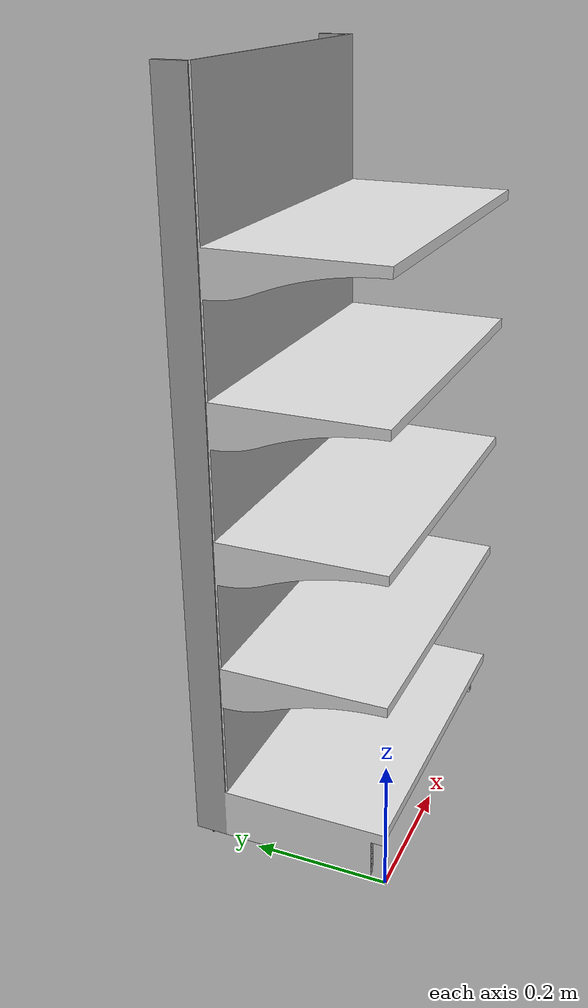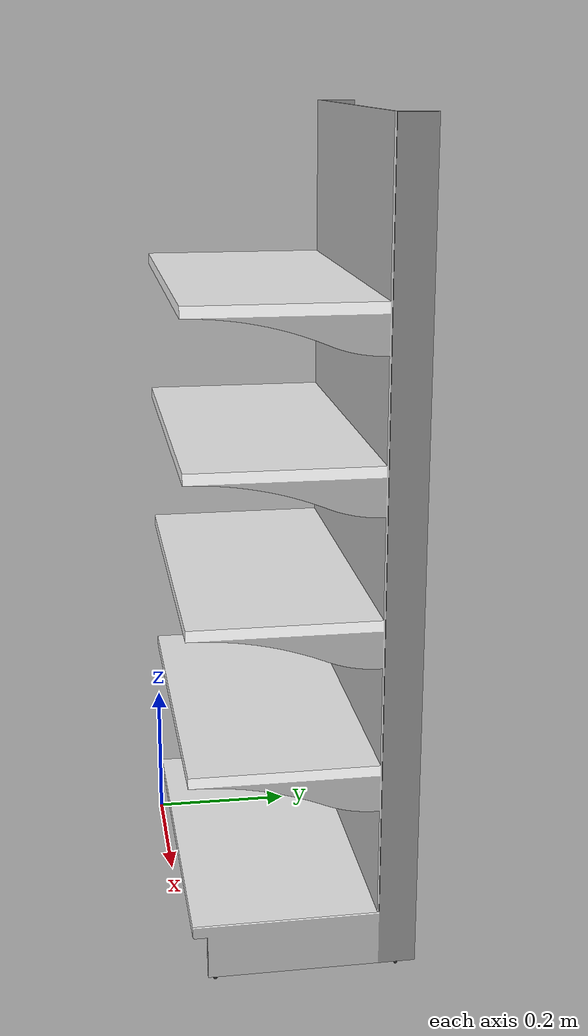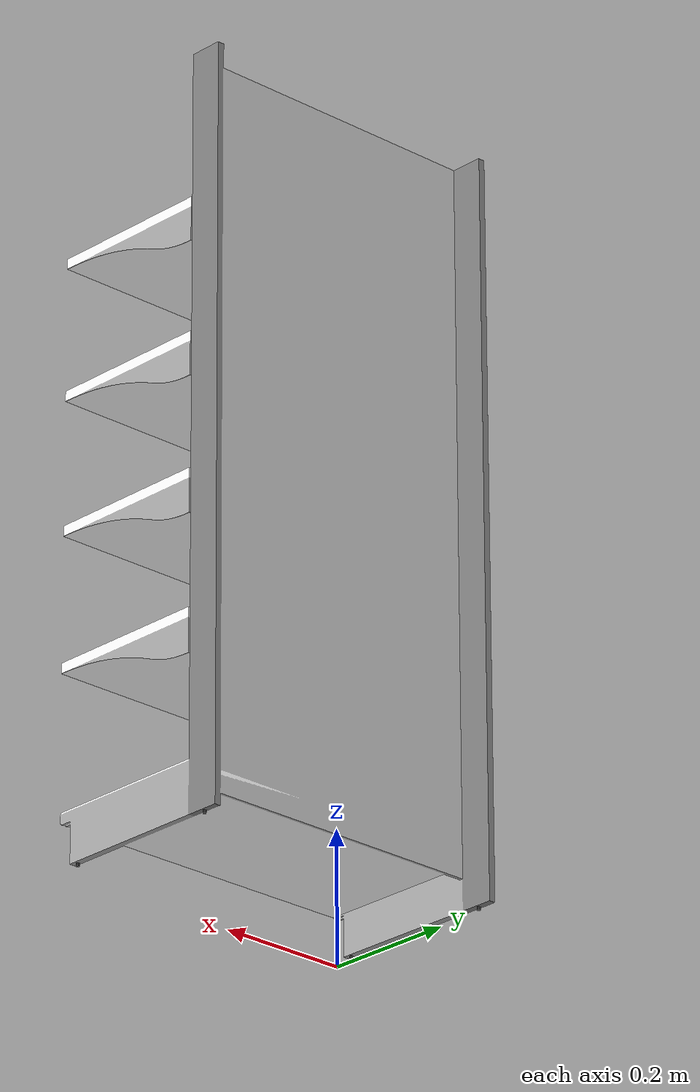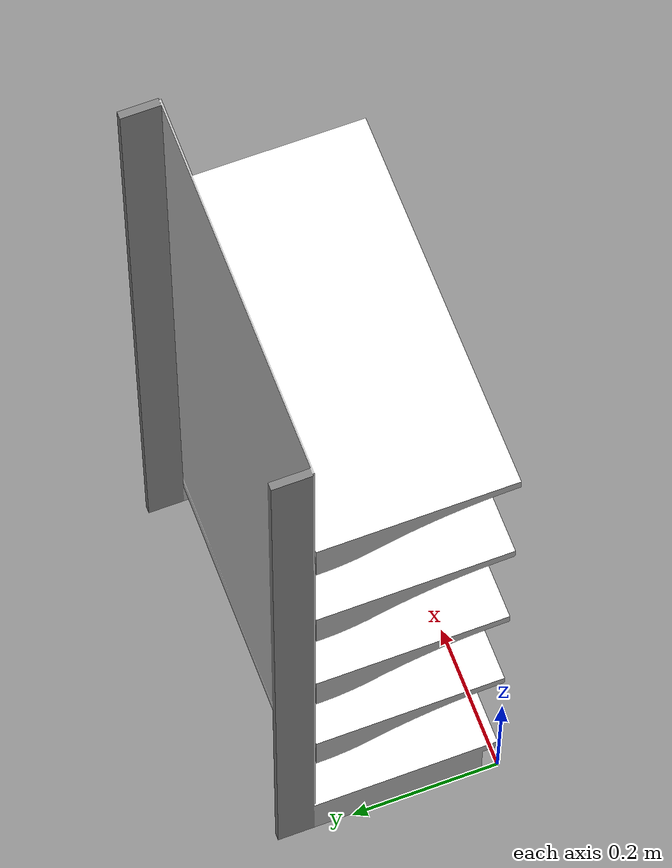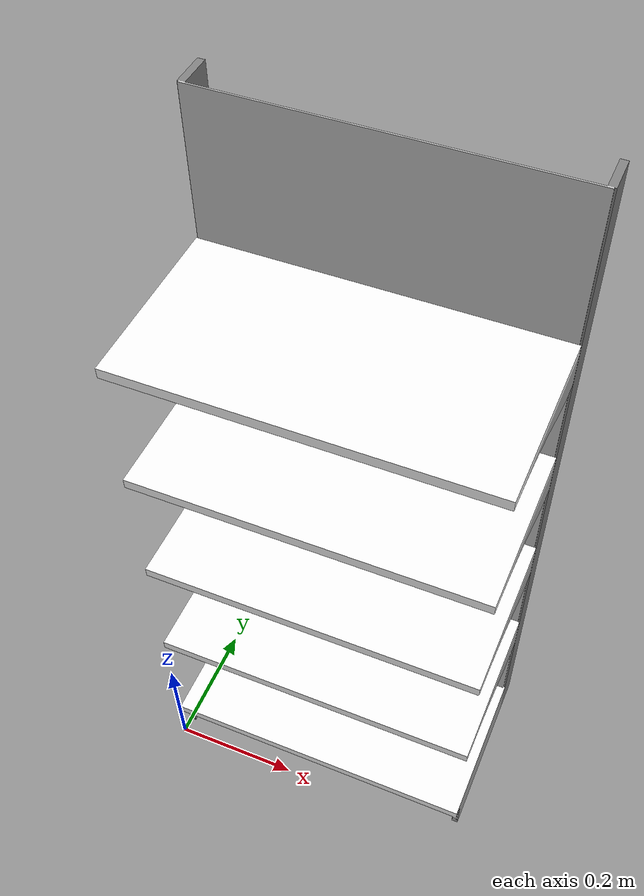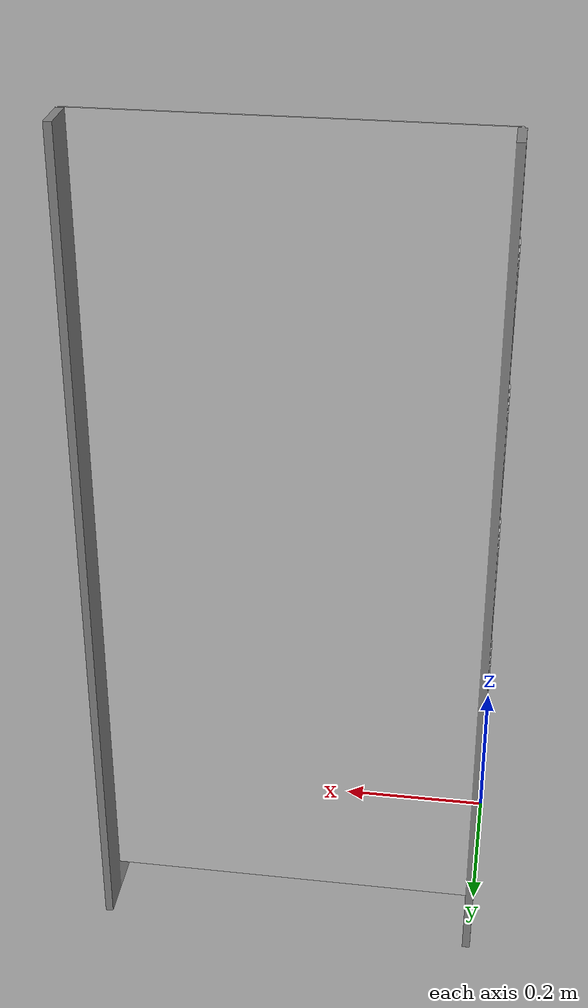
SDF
<?xml version="1.0" ?>
<sdf version="1.5">
  <model name="shelving_wall_unit_1">
    <static>true</static>
    <link name="rshelving_wall_unit_1_link">
        <collision name="shelving_wall_unit_1_collision">
         <geometry>
            <mesh>
                <uri>model://shelving_wall_unit_1/meshes/model.dae</uri>
                <scale>0.5 0.5 0.5</scale>
            </mesh>
        </geometry>
      </collision>

      <visual name="shelving_wall_unit_1_mesh">
        <cast_shadows>true</cast_shadows>
        <geometry>
            <mesh>
                <uri>model://shelving_wall_unit_1/meshes/model.dae</uri>
                <scale>0.5 0.5 0.5</scale>
            </mesh>
        </geometry>
      </visual>
    </link>
  </model>
</sdf>
